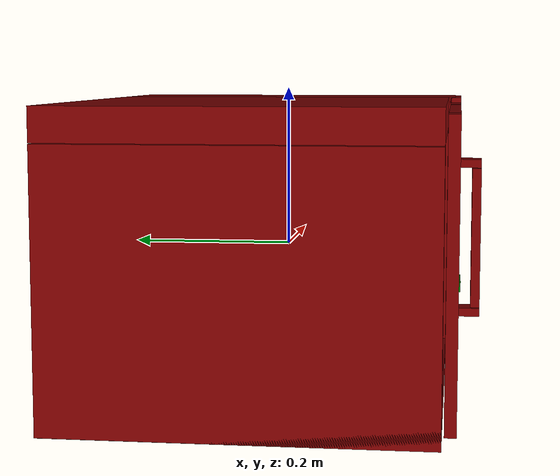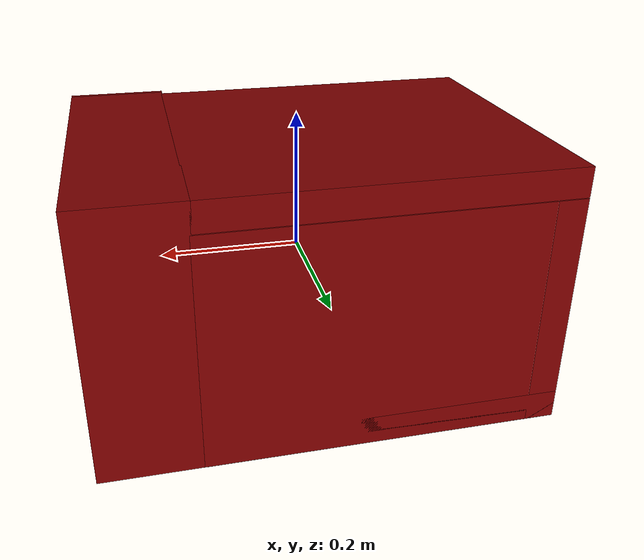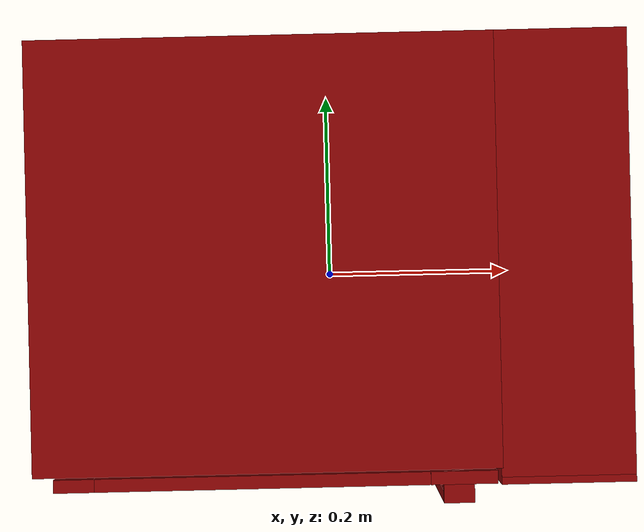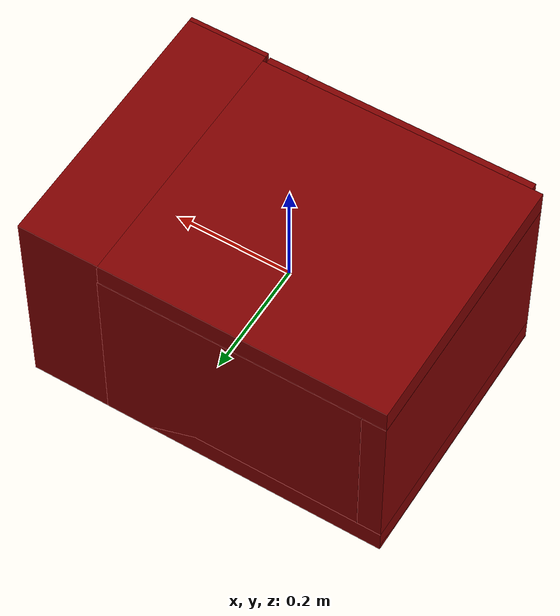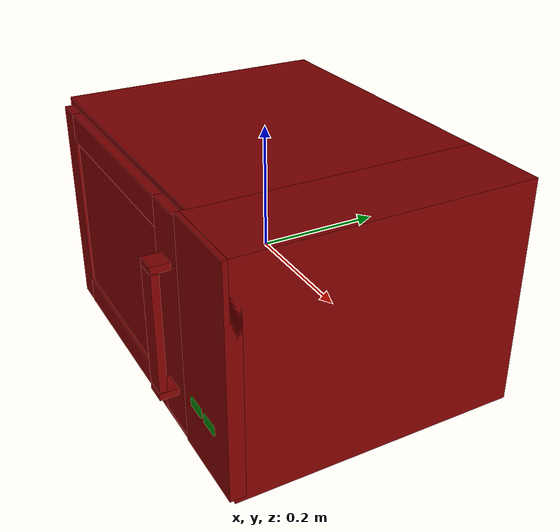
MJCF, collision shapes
<mujoco model="model">
  <compiler angle="radian"/>
  <asset>
    <mesh file="visuals/door.obj" name="door_vis"/>
    <mesh file="visuals/door_Clear.obj" name="door_Clear_vis"/>
    <mesh file="visuals/Body001.obj" name="Body001_vis"/>
    <mesh file="visuals/Disc001.obj" name="Disc001_vis"/>
    <texture file="visuals/T_BC001.png" name="Body001_material" type="2d"/>
    <material name="Body001_material" rgba="1 1 1 1.0" texture="Body001_material" shininess="0.141421377658844" specular="0.3103448502657381"/>
    <texture file="visuals/T_BC001.png" name="door_material" type="2d"/>
    <material name="door_material" rgba="1 1 1 1.0" texture="door_material" shininess="0.141421377658844" specular="0.3103448502657381"/>
    <texture file="visuals/T_BC001.png" name="door_Clear_material" type="2d"/>
    <material name="door_Clear_material" rgba="1 1 1 0.904090940952301" texture="door_Clear_material" shininess="0.141421377658844" specular="0.3103448502657381"/>
    <texture file="visuals/T_BC001.png" name="Disc001_material" type="2d"/>
    <material name="Disc001_material" rgba="1 1 1 1.0" texture="Disc001_material" shininess="0.141421377658844" specular="0.3103448502657381"/>
  </asset>
  <default>
    <default class="visual">
      <geom conaffinity="0" contype="0" group="1" type="mesh"/>
    </default>
    <default class="collision">
      <geom group="0" rgba="0.5 0 0 0.5"/>
    </default>
    <default class="spawn">
      <geom group="0" rgba="1 1 1 0.5" contype="0" conaffinity="0"/>
      <site group="0" rgba="1 1 1 0.5"/>
    </default>
    <default class="region">
      <geom group="1" conaffinity="0" contype="0" rgba="0 1 0 0"/>
    </default>
  </default>
  <worldbody>
    <body>
      <body name="object">
        <geom class="collision" type="box" pos="-0.0719403624534607 -0.0337458997964859 -0.1243281438946724" size="0.15807774662971497 0.15807774662971497 0.004610341973602772" quat="1.0 0.0 0.0 0.0" name="tray" rgba="0 1 0 0.5"/>
        <geom class="collision" type="box" pos="0.25890564918518066 -0.2222229391336441 -0.08670908212661743" size="0.01590709015727043 0.0009480940643697977 0.007239048834890127" quat="1.0 0.0 0.0 0.0" name="start_button" rgba="0.0 0.5 0 0.5"/>
        <geom class="collision" type="box" pos="0.2182595431804657 -0.2222229391336441 -0.08691444993019104" size="0.015789594501256943 0.001085944939404726 0.007118518929928541" quat="1.0 0.0 0.0 0.0" name="stop_button" rgba="0.0 0.5 0 0.5"/>
        <geom mesh="Body001_vis" type="mesh" solimp="0.998 0.998 0.001" solref="0.001 1" density="100" friction="0.95 0.3 0.1" class="visual" material="Body001_material"/>
        <geom class="collision" type="box" pos="-0.06884283572435379 0.022885950282216072 0.16481298208236694" size="0.24323296546936035 0.22624452412128448 0.020275045186281204" quat="1.0 0.0 0.0 0.0"/>
        <geom class="collision" type="box" pos="-0.2917897403240204 0.022885950282216072 -0.020866483449935913" size="0.020286036655306816 0.22624452412128448 0.16436982154846191" quat="1.0 0.0 0.0 0.0"/>
        <geom class="collision" type="box" pos="-0.04750563204288483 0.19669021666049957 -0.020866483449935913" size="0.22367341816425323 0.05244026333093643 0.16436982154846191" quat="1.0 0.0 0.0 0.0"/>
        <geom class="collision" type="box" pos="0.24226416647434235 0.01827816851437092 -7.41510302759707e-05" size="0.06962152570486069 0.23085230588912964 0.18516217172145844" quat="1.0 0.0 0.0 0.0"/>
        <geom class="collision" type="box" pos="-0.06884283572435379 0.022885950282216072 -0.16497758030891418" size="0.24323296546936035 0.22624452412128448 0.02046176604926586" quat="1.0 0.0 0.0 0.0"/>
        <geom class="collision" type="box" pos="0.24226416647434235 -0.20806361734867096 0.0030219033360481262" size="0.06962152570486069 0.012136319652199745 0.18198822438716888" quat="1.0 0.0 0.0 0.0"/>
        <geom class="collision" type="box" pos="0.13868679106235504 0.022885950282216072 -0.020866483449935913" size="0.02039705216884613 0.22624452412128448 0.16436982154846191" quat="1.0 0.0 0.0 0.0"/>
        <body name="door">
          <joint axis="0.0 0.0 1.0" pos="-0.3008042871952057 -0.21070002019405365 -4.366040229797363e-06" limited="true" name="microjoint" range="-1.5707963267948966 0.0" type="hinge" damping="1" frictionloss="1" armature=".01" stiffness="0.05"/>
          <geom mesh="door_vis" type="mesh" solimp="0.998 0.998 0.001" solref="0.001 1" density="100" friction="0.95 0.3 0.1" class="visual" material="door_material"/>
          <geom class="collision" type="box" pos="-0.27052390575408936 -0.21300306916236877 0.001129285548813641" size="0.021218402311205864 0.0068229069001972675 0.1762661337852478" quat="1.0 0.0 0.0 0.0"/>
          <geom class="collision" type="box" pos="0.13445794582366943 -0.23423340916633606 0.09682998061180115" size="0.01661655493080616 0.014941616915166378 0.005686471704393625" quat="1.0 0.0 0.0 0.0"/>
          <geom class="collision" type="box" pos="0.13445794582366943 -0.24301834404468536 -0.005521875806152821" size="0.01661655493080616 0.006156721152365208 0.09547507762908936" quat="1.0 0.0 0.0 0.0" name="door_handle"/>
          <geom class="collision" type="box" pos="0.13445794582366943 -0.23423340916633606 -0.10793755948543549" size="0.01661655493080616 0.014941634610295296 0.005686475895345211" quat="1.0 0.0 0.0 0.0"/>
          <geom class="collision" type="box" pos="-0.0403703972697258 -0.21300308406352997 0.15397147834300995" size="0.20967769622802734 0.006822952069342136 0.023004382848739624" quat="1.0 0.0 0.0 0.0"/>
          <geom class="collision" type="box" pos="-0.04043985903263092 -0.21300308406352997 -0.15512904524803162" size="0.20974716544151306 0.006822952069342136 0.02121843956410885" quat="1.0 0.0 0.0 0.0"/>
          <geom class="collision" type="box" pos="0.1346229612827301 -0.21300309896469116 0.0030744848772883415" size="0.034722644835710526 0.006822975818067789 0.17462892830371857" quat="1.0 0.0 0.0 0.0"/>
          <body name="door_Clear">
            <geom mesh="door_Clear_vis" type="mesh" solimp="0.998 0.998 0.001" solref="0.001 1" density="100" friction="0.95 0.3 0.1" class="visual" material="door_Clear_material"/>
            <geom class="collision" type="box" pos="-0.0748424381017685 -0.21355846524238586 -0.0022822171449661255" size="0.17183631658554077 0.0023258894216269255 0.13130086660385132" quat="1.0 0.0 0.0 0.0"/>
          </body>
        </body>
        <body name="Disc001">
          <joint axis="0.0 0.0 1.0" pos="-0.0719403624534607 -0.0337458997964859 -0.13241347670555115" limited="false" name="Disc001_joint" range="0 360" type="hinge" damping="1" frictionloss="1" armature=".01" stiffness="0.05"/>
          <geom mesh="Disc001_vis" type="mesh" solimp="0.998 0.998 0.001" solref="0.001 1" density="100" friction="0.95 0.3 0.1" class="visual" material="Disc001_material"/>
          <geom class="collision" type="cylinder" pos="-0.0719403624534607 -0.0337458997964859 -0.13684332370758057" size="0.15807774662971497 0.005968113895505667" quat="1.0 0.0 0.0 0.0"/>
        </body>
        <geom class="region" name="reg_main" type="box" pos="-9.504705667495728e-05 0.014272108674049377 0.0" size="0.3119807243347168 0.23485837876796722 0.18508800864219666"/>
        <geom class="region" name="reg_int" type="box" pos="-0.07706695795059204 -0.0314520001411438 -0.0001125633716583252" size="0.1921151578426361 0.17233622074127197 0.14265498518943787"/>
      </body>
    </body>
  </worldbody>
  <actuator>
    <motor name="microjoint_actuator" joint="microjoint" gear="10"/>
    <motor name="Disc001_joint_actuator" joint="Disc001_joint" gear="10"/>
  </actuator>
</mujoco>
